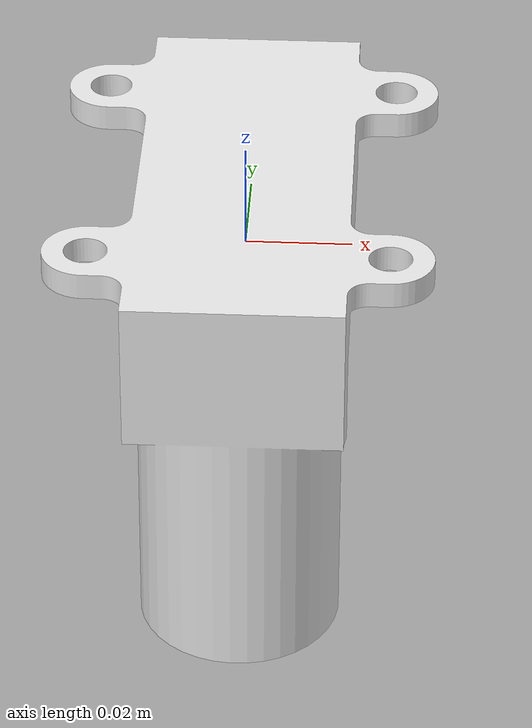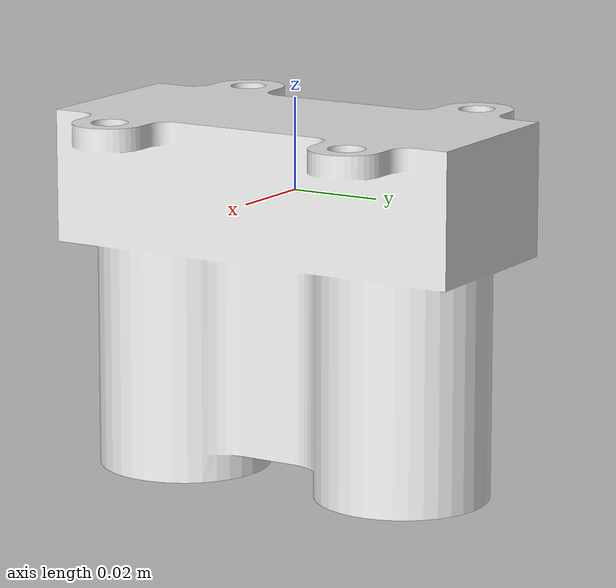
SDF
<?xml version="1.0" ?>
<sdf version="1.4">
  <model name="lidar_lite">
    <link name="link">
      <pose>0 0 0 0 0 0</pose>
      <inertial>
        <pose>0 0 0 0 0 0</pose>
        <mass>0.01</mass>
        <inertia>
          <ixx>2.1733e-6</ixx>
          <ixy>0</ixy>
          <ixz>0</ixz>
          <iyy>2.1733e-6</iyy>
          <iyz>0</iyz>
          <izz>1.8e-7</izz>
        </inertia>
      </inertial>
      <visual name="visual">
        <geometry>
          <mesh>
            <scale>0.002 0.002 0.002</scale>
            <uri>model://lidar_lite/meshes/Lidar_Lite_Laser_Optics.STL</uri>
          </mesh>
        </geometry>
        <material>
          <script>
            <name>Gazebo/White</name>
            <uri>file://media/materials/scripts/gazebo.material</uri>
          </script>
        </material>
      </visual>
      <sensor name="laser" type="ray">
        <pose>0 0 -0.195 0 1.57079633 0</pose>
        <ray>
          <scan>
            <horizontal>
              <samples>1</samples>
              <resolution>1</resolution>
              <min_angle>-0</min_angle>
              <max_angle>0</max_angle>
            </horizontal>
          </scan>
          <range>
            <min>0.06</min> <!-- do not change: use min_distance (below) for realistic behavior (smaller values cause issues) 0.2 -0.195-->
            <max>35</max>   <!-- do not change: use min_distance (below) for realistic behavior (bigger values cause issues) 15.0 -->
            <resolution>0.01</resolution>
          </range>
          <noise>
            <type>gaussian</type>
            <mean>0.0</mean>
            <stddev>0.02</stddev>
          </noise>
        </ray>
        <plugin name="LaserPlugin" filename="libgazebo_lidar_plugin.so">
          <robotNamespace></robotNamespace>
          <min_distance>0.08</min_distance>
          <max_distance>30.0</max_distance>
        </plugin>
        <always_on>1</always_on>
        <update_rate>20</update_rate>
        <visualize>true</visualize>
      </sensor>
    </link>
  </model>
</sdf>
